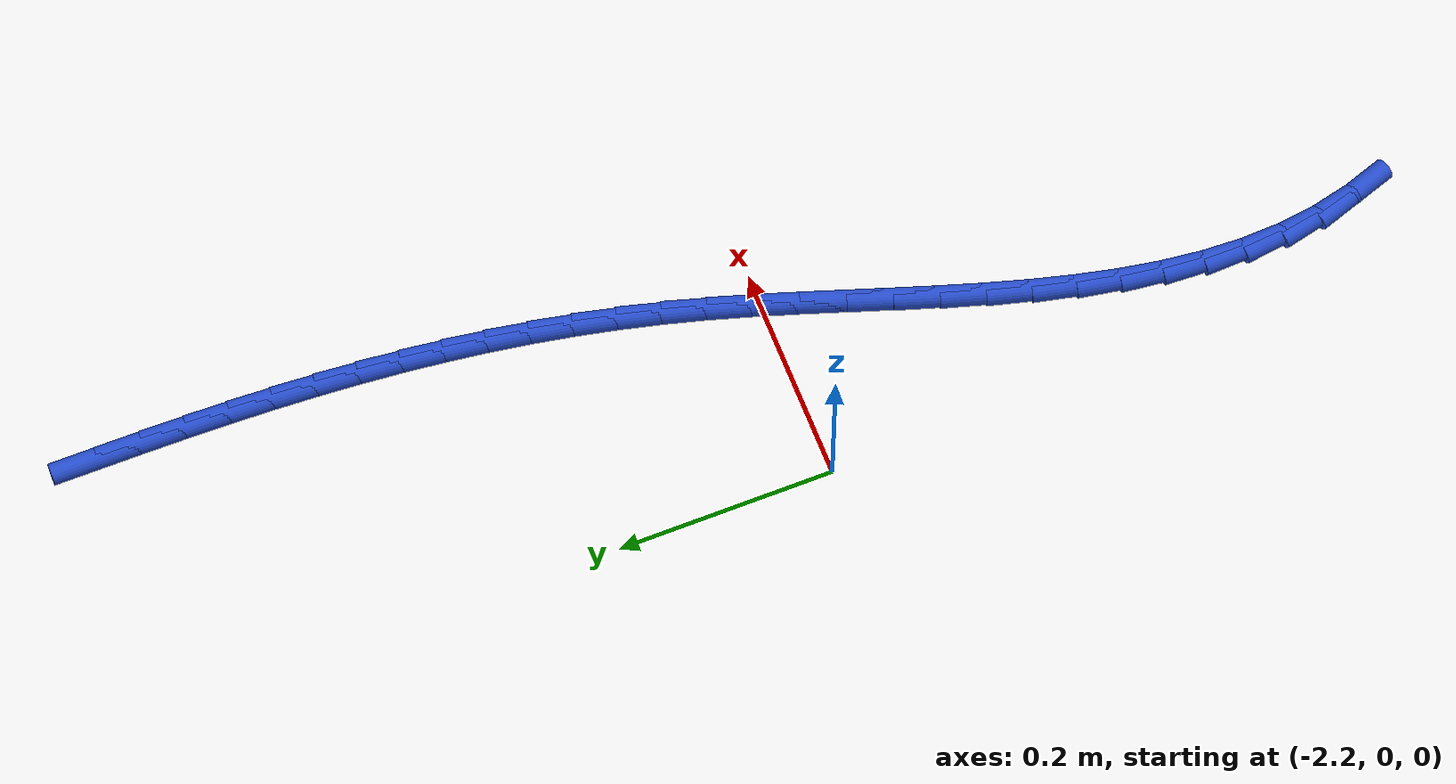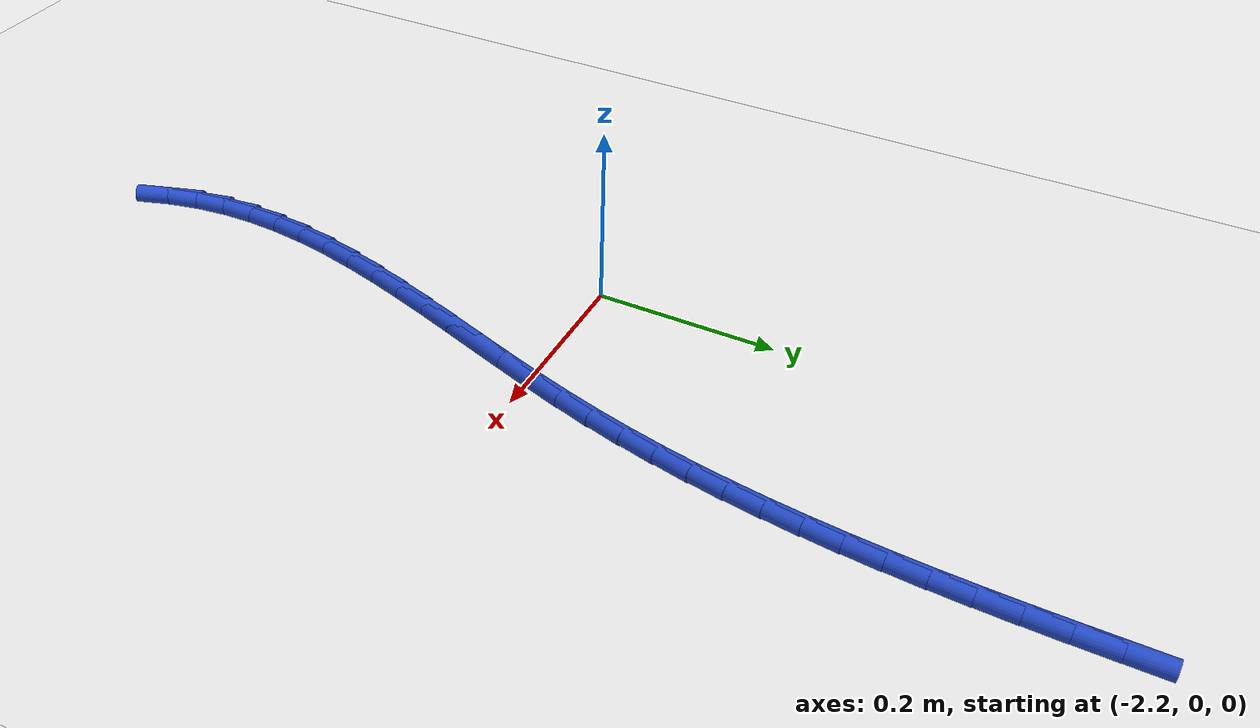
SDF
<sdf version="1.6">
 <world name="default">
  <model name="ground_plane">
   <static>1</static>
   <link name="link">
    <collision name="collision">
     <geometry><plane><normal>0 0 1</normal><size>100 100</size></plane></geometry>
     <surface><friction><ode><mu>100</mu><mu2>50</mu2></ode></friction></surface>
    </collision>
    <visual name="visual">
     <cast_shadows>0</cast_shadows>
     <geometry><plane><normal>0 0 1</normal><size>100 100</size></plane></geometry>
     <material>
      <script><uri>file://media/materials/scripts/gazebo.material</uri><name>Gazebo/WhiteGlow</name></script>
     </material>
    </visual>
   </link>
  </model>
  <model name="line">
   <link name="link_74">
    <pose>-1.9562857126756021 0.5991420295607026 0.01 0 1.57 1.5666663399741731</pose>
    <collision name="collision">
     <geometry><cylinder><radius>0.01</radius><length>0.08</length></cylinder></geometry>
    </collision>
    <visual name="visual">
     <material>
      <script><name>Gazebo/Blue</name><uri>file://media/materials/scripts/gazebo.material</uri></script>
     </material>
     <geometry><cylinder><radius>0.01</radius><length>0.08</length></cylinder></geometry>
    </visual>
   </link>
   <link name="link_75">
    <pose>-1.9564603084628245 0.5568671260031804 0.01 0 1.57 1.5594205305227684</pose>
    <collision name="collision">
     <geometry><cylinder><radius>0.01</radius><length>0.08</length></cylinder></geometry>
    </collision>
    <visual name="visual">
     <material>
      <script><name>Gazebo/Blue</name><uri>file://media/materials/scripts/gazebo.material</uri></script>
     </material>
     <geometry><cylinder><radius>0.01</radius><length>0.08</length></cylinder></geometry>
    </visual>
   </link>
   <link name="link_76">
    <pose>-1.9569333744017103 0.5152836164971558 0.01 0 1.57 1.547436867257803</pose>
    <collision name="collision">
     <geometry><cylinder><radius>0.01</radius><length>0.08</length></cylinder></geometry>
    </collision>
    <visual name="visual">
     <material>
      <script><name>Gazebo/Blue</name><uri>file://media/materials/scripts/gazebo.material</uri></script>
     </material>
     <geometry><cylinder><radius>0.01</radius><length>0.08</length></cylinder></geometry>
    </visual>
   </link>
   <link name="link_77">
    <pose>-1.9578881304892581 0.47441869747247734 0.01 0 1.57 1.5334602290007382</pose>
    <collision name="collision">
     <geometry><cylinder><radius>0.01</radius><length>0.08</length></cylinder></geometry>
    </collision>
    <visual name="visual">
     <material>
      <script><name>Gazebo/Blue</name><uri>file://media/materials/scripts/gazebo.material</uri></script>
     </material>
     <geometry><cylinder><radius>0.01</radius><length>0.08</length></cylinder></geometry>
    </visual>
   </link>
   <link name="link_78">
    <pose>-1.9593909180990623 0.43418714285770454 0.01 0 1.57 1.517495593245619</pose>
    <collision name="collision">
     <geometry><cylinder><radius>0.01</radius><length>0.08</length></cylinder></geometry>
    </collision>
    <visual name="visual">
     <material>
      <script><name>Gazebo/Blue</name><uri>file://media/materials/scripts/gazebo.material</uri></script>
     </material>
     <geometry><cylinder><radius>0.01</radius><length>0.08</length></cylinder></geometry>
    </visual>
   </link>
   <link name="link_79">
    <pose>-1.9615080786047177 0.39450372658139565 0.01 0 1.57 1.4995799265684002</pose>
    <collision name="collision">
     <geometry><cylinder><radius>0.01</radius><length>0.08</length></cylinder></geometry>
    </collision>
    <visual name="visual">
     <material>
      <script><name>Gazebo/Blue</name><uri>file://media/materials/scripts/gazebo.material</uri></script>
     </material>
     <geometry><cylinder><radius>0.01</radius><length>0.08</length></cylinder></geometry>
    </visual>
   </link>
   <link name="link_80">
    <pose>-1.9643059533798184 0.35528322257210854 0.01 0 1.57 1.479784974454773</pose>
    <collision name="collision">
     <geometry><cylinder><radius>0.01</radius><length>0.08</length></cylinder></geometry>
    </collision>
    <visual name="visual">
     <material>
      <script><name>Gazebo/Blue</name><uri>file://media/materials/scripts/gazebo.material</uri></script>
     </material>
     <geometry><cylinder><radius>0.01</radius><length>0.08</length></cylinder></geometry>
    </visual>
   </link>
   <link name="link_81">
    <pose>-1.9678508837979591 0.3164404047584028 0.01 0 1.57 1.4582189057279142</pose>
    <collision name="collision">
     <geometry><cylinder><radius>0.01</radius><length>0.08</length></cylinder></geometry>
    </collision>
    <visual name="visual">
     <material>
      <script><name>Gazebo/Blue</name><uri>file://media/materials/scripts/gazebo.material</uri></script>
     </material>
     <geometry><cylinder><radius>0.01</radius><length>0.08</length></cylinder></geometry>
    </visual>
   </link>
   <link name="link_82">
    <pose>-1.972209211232734 0.2778900470688364 0.01 0 1.57 1.435026454988793</pose>
    <collision name="collision">
     <geometry><cylinder><radius>0.01</radius><length>0.08</length></cylinder></geometry>
    </collision>
    <visual name="visual">
     <material>
      <script><name>Gazebo/Blue</name><uri>file://media/materials/scripts/gazebo.material</uri></script>
     </material>
     <geometry><cylinder><radius>0.01</radius><length>0.08</length></cylinder></geometry>
    </visual>
   </link>
   <link name="link_83">
    <pose>-1.9774472770577385 0.2395469234319676 0.01 0 1.57 1.4103872773585167</pose>
    <collision name="collision">
     <geometry><cylinder><radius>0.01</radius><length>0.08</length></cylinder></geometry>
    </collision>
    <visual name="visual">
     <material>
      <script><name>Gazebo/Blue</name><uri>file://media/materials/scripts/gazebo.material</uri></script>
     </material>
     <geometry><cylinder><radius>0.01</radius><length>0.08</length></cylinder></geometry>
    </visual>
   </link>
   <link name="link_84">
    <pose>-1.9836314226465668 0.20132580777635578 0.01 0 1.57 1.384512361514638</pose>
    <collision name="collision">
     <geometry><cylinder><radius>0.01</radius><length>0.08</length></cylinder></geometry>
    </collision>
    <visual name="visual">
     <material>
      <script><name>Gazebo/Blue</name><uri>file://media/materials/scripts/gazebo.material</uri></script>
     </material>
     <geometry><cylinder><radius>0.01</radius><length>0.08</length></cylinder></geometry>
    </visual>
   </link>
   <link name="link_85">
    <pose>-1.9908279893728122 0.1631414740305585 0.01 0 1.57 1.3576385315571413</pose>
    <collision name="collision">
     <geometry><cylinder><radius>0.01</radius><length>0.08</length></cylinder></geometry>
    </collision>
    <visual name="visual">
     <material>
      <script><name>Gazebo/Blue</name><uri>file://media/materials/scripts/gazebo.material</uri></script>
     </material>
     <geometry><cylinder><radius>0.01</radius><length>0.08</length></cylinder></geometry>
    </visual>
   </link>
   <link name="link_86">
    <pose>-1.999103318610071 0.12490869612313532 0.01 0 1.57 1.3300212825872042</pose>
    <collision name="collision">
     <geometry><cylinder><radius>0.01</radius><length>0.08</length></cylinder></geometry>
    </collision>
    <visual name="visual">
     <material>
      <script><name>Gazebo/Blue</name><uri>file://media/materials/scripts/gazebo.material</uri></script>
     </material>
     <geometry><cylinder><radius>0.01</radius><length>0.08</length></cylinder></geometry>
    </visual>
   </link>
   <link name="link_87">
    <pose>-2.008523751731936 0.0865422479826442 0.01 0 1.57 1.301931728642851</pose>
    <collision name="collision">
     <geometry><cylinder><radius>0.01</radius><length>0.08</length></cylinder></geometry>
    </collision>
    <visual name="visual">
     <material>
      <script><name>Gazebo/Blue</name><uri>file://media/materials/scripts/gazebo.material</uri></script>
     </material>
     <geometry><cylinder><radius>0.01</radius><length>0.08</length></cylinder></geometry>
    </visual>
   </link>
   <link name="link_88">
    <pose>-2.0191553851367057 0.04795699027958046 0.01 0 1.57 1.2758550231181396</pose>
    <collision name="collision">
     <geometry><cylinder><radius>0.01</radius><length>0.08</length></cylinder></geometry>
    </collision>
    <visual name="visual">
     <material>
      <script><name>Gazebo/Blue</name><uri>file://media/materials/scripts/gazebo.material</uri></script>
     </material>
     <geometry><cylinder><radius>0.01</radius><length>0.08</length></cylinder></geometry>
    </visual>
   </link>
   <link name="link_89">
    <pose>-2.030958640345438 0.009105201512521945 0.01 0 1.57 1.257321574244123</pose>
    <collision name="collision">
     <geometry><cylinder><radius>0.01</radius><length>0.08</length></cylinder></geometry>
    </collision>
    <visual name="visual">
     <material>
      <script><name>Gazebo/Blue</name><uri>file://media/materials/scripts/gazebo.material</uri></script>
     </material>
     <geometry><cylinder><radius>0.01</radius><length>0.08</length></cylinder></geometry>
    </visual>
   </link>
   <link name="link_90">
    <pose>-2.0436238206939783 -0.029965195177822763 0.01 0 1.57 1.2467639665136139</pose>
    <collision name="collision">
     <geometry><cylinder><radius>0.01</radius><length>0.08</length></cylinder></geometry>
    </collision>
    <visual name="visual">
     <material>
      <script><name>Gazebo/Blue</name><uri>file://media/materials/scripts/gazebo.material</uri></script>
     </material>
     <geometry><cylinder><radius>0.01</radius><length>0.08</length></cylinder></geometry>
    </visual>
   </link>
   <link name="link_91">
    <pose>-2.0567986871485724 -0.0691912130602918 0.01 0 1.57 1.243879414432129</pose>
    <collision name="collision">
     <geometry><cylinder><radius>0.01</radius><length>0.08</length></cylinder></geometry>
    </collision>
    <visual name="visual">
     <material>
      <script><name>Gazebo/Blue</name><uri>file://media/materials/scripts/gazebo.material</uri></script>
     </material>
     <geometry><cylinder><radius>0.01</radius><length>0.08</length></cylinder></geometry>
    </visual>
   </link>
   <link name="link_92">
    <pose>-2.0701310006754667 -0.10850986540372412 0.01 0 1.57 1.2485558849798888</pose>
    <collision name="collision">
     <geometry><cylinder><radius>0.01</radius><length>0.08</length></cylinder></geometry>
    </collision>
    <visual name="visual">
     <material>
      <script><name>Gazebo/Blue</name><uri>file://media/materials/scripts/gazebo.material</uri></script>
     </material>
     <geometry><cylinder><radius>0.01</radius><length>0.08</length></cylinder></geometry>
    </visual>
   </link>
   <link name="link_93">
    <pose>-2.0832685222409055 -0.14785816547695627 0.01 0 1.57 1.2608695209241718</pose>
    <collision name="collision">
     <geometry><cylinder><radius>0.01</radius><length>0.08</length></cylinder></geometry>
    </collision>
    <visual name="visual">
     <material>
      <script><name>Gazebo/Blue</name><uri>file://media/materials/scripts/gazebo.material</uri></script>
     </material>
     <geometry><cylinder><radius>0.01</radius><length>0.08</length></cylinder></geometry>
    </visual>
   </link>
   <link name="link_94">
    <pose>-2.0958590128111343 -0.1871731265488271 0.01 0 1.57 1.2810801582313998</pose>
    <collision name="collision">
     <geometry><cylinder><radius>0.01</radius><length>0.08</length></cylinder></geometry>
    </collision>
    <visual name="visual">
     <material>
      <script><name>Gazebo/Blue</name><uri>file://media/materials/scripts/gazebo.material</uri></script>
     </material>
     <geometry><cylinder><radius>0.01</radius><length>0.08</length></cylinder></geometry>
    </visual>
   </link>
   <link name="link_95">
    <pose>-2.107550233352399 -0.2263917618881748 0.01 0 1.57 1.3096229458256334</pose>
    <collision name="collision">
     <geometry><cylinder><radius>0.01</radius><length>0.08</length></cylinder></geometry>
    </collision>
    <visual name="visual">
     <material>
      <script><name>Gazebo/Blue</name><uri>file://media/materials/scripts/gazebo.material</uri></script>
     </material>
     <geometry><cylinder><radius>0.01</radius><length>0.08</length></cylinder></geometry>
    </visual>
   </link>
   <link name="link_96">
    <pose>-2.1179899448309456 -0.26545108476383755 0.01 0 1.57 1.347090394142559</pose>
    <collision name="collision">
     <geometry><cylinder><radius>0.01</radius><length>0.08</length></cylinder></geometry>
    </collision>
    <visual name="visual">
     <material>
      <script><name>Gazebo/Blue</name><uri>file://media/materials/scripts/gazebo.material</uri></script>
     </material>
     <geometry><cylinder><radius>0.01</radius><length>0.08</length></cylinder></geometry>
    </visual>
   </link>
   <link name="link_97">
    <pose>-2.1268259082130188 -0.3042881084446534 0.01 0 1.57 1.3941946250800332</pose>
    <collision name="collision">
     <geometry><cylinder><radius>0.01</radius><length>0.08</length></cylinder></geometry>
    </collision>
    <visual name="visual">
     <material>
      <script><name>Gazebo/Blue</name><uri>file://media/materials/scripts/gazebo.material</uri></script>
     </material>
     <geometry><cylinder><radius>0.01</radius><length>0.08</length></cylinder></geometry>
    </visual>
   </link>
   <link name="link_98">
    <pose>-2.133705884464865 -0.34283984619946145 0.01 0 1.57 1.4516942406519946</pose>
    <collision name="collision">
     <geometry><cylinder><radius>0.01</radius><length>0.08</length></cylinder></geometry>
    </collision>
    <visual name="visual">
     <material>
      <script><name>Gazebo/Blue</name><uri>file://media/materials/scripts/gazebo.material</uri></script>
     </material>
     <geometry><cylinder><radius>0.01</radius><length>0.08</length></cylinder></geometry>
    </visual>
   </link>
   <link name="link_99">
    <pose>-2.138277634552729 -0.3810433112970982 0.01 0 1.57 1.5202658572263272</pose>
    <collision name="collision">
     <geometry><cylinder><radius>0.01</radius><length>0.08</length></cylinder></geometry>
    </collision>
    <visual name="visual">
     <material>
      <script><name>Gazebo/Blue</name><uri>file://media/materials/scripts/gazebo.material</uri></script>
     </material>
     <geometry><cylinder><radius>0.01</radius><length>0.08</length></cylinder></geometry>
    </visual>
   </link>
   <link name="link_100">
    <pose>-2.1401889194428563 -0.4188355170064023 0.01 0 1.57 -1.541290434621924</pose>
    <collision name="collision">
     <geometry><cylinder><radius>0.01</radius><length>0.08</length></cylinder></geometry>
    </collision>
    <visual name="visual">
     <material>
      <script><name>Gazebo/Blue</name><uri>file://media/materials/scripts/gazebo.material</uri></script>
     </material>
     <geometry><cylinder><radius>0.01</radius><length>0.08</length></cylinder></geometry>
    </visual>
   </link>
   <link name="link_101">
    <pose>-2.1390875001014926 -0.4561534765962122 0.01 0 1.57 -1.4499558242790607</pose>
    <collision name="collision">
     <geometry><cylinder><radius>0.01</radius><length>0.08</length></cylinder></geometry>
    </collision>
    <visual name="visual">
     <material>
      <script><name>Gazebo/Blue</name><uri>file://media/materials/scripts/gazebo.material</uri></script>
     </material>
     <geometry><cylinder><radius>0.01</radius><length>0.08</length></cylinder></geometry>
    </visual>
   </link>
   <link name="link_102">
    <pose>-2.134621137494884 -0.49293420333536603 0.01 0 1.57 -1.3498921355966558</pose>
    <collision name="collision">
     <geometry><cylinder><radius>0.01</radius><length>0.08</length></cylinder></geometry>
    </collision>
    <visual name="visual">
     <material>
      <script><name>Gazebo/Blue</name><uri>file://media/materials/scripts/gazebo.material</uri></script>
     </material>
     <geometry><cylinder><radius>0.01</radius><length>0.08</length></cylinder></geometry>
    </visual>
   </link>
   <link name="link_103">
    <pose>-2.1264947572611326 -0.5291207630248087 0.01 0 1.57 -1.2540442960686966</pose>
    <collision name="collision">
     <geometry><cylinder><radius>0.01</radius><length>0.08</length></cylinder></geometry>
    </collision>
    <visual name="visual">
     <material>
      <script><name>Gazebo/Blue</name><uri>file://media/materials/scripts/gazebo.material</uri></script>
     </material>
     <geometry><cylinder><radius>0.01</radius><length>0.08</length></cylinder></geometry>
    </visual>
   </link>
  </model>
 </world>
</sdf>
